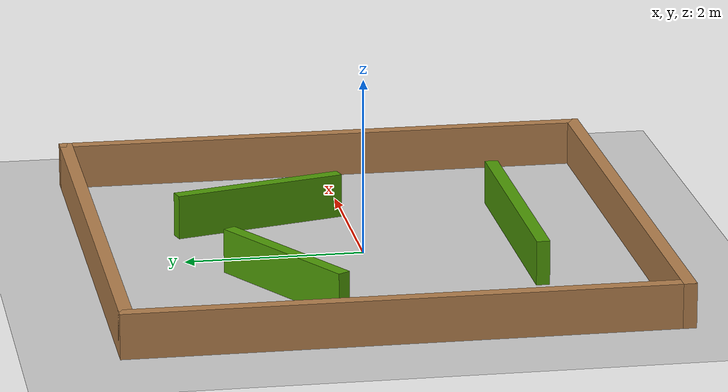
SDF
<sdf version="1.7">
 <world name="default">
  <light name="sun" type="directional">
   <pose>0 0 10 0 -0 0</pose>
   <diffuse>0.8 0.8 0.8 1</diffuse>
   <specular>0.2 0.2 0.2 1</specular>
   <attenuation>
    <range>1000</range>
    <constant>0.9</constant>
    <linear>0.01</linear>
    <quadratic>0.001</quadratic>
   </attenuation>
   <direction>-0.5 0.1 -0.9</direction>
   <spot><inner_angle>0</inner_angle><outer_angle>0</outer_angle><falloff>0</falloff></spot>
  </light>
  <model name="ground_plane">
   <static>1</static>
   <link name="link">
    <collision name="collision">
     <geometry><plane><normal>0 0 1</normal><size>100 100</size></plane></geometry>
     <surface>
      <contact><collide_bitmask>65535</collide_bitmask></contact>
      <friction><ode><mu>100</mu><mu2>50</mu2></ode></friction>
     </surface>
    </collision>
    <visual name="visual">
     <cast_shadows>0</cast_shadows>
     <geometry><plane><normal>0 0 1</normal><size>100 100</size></plane></geometry>
     <material>
      <script><uri>file://media/materials/scripts/gazebo.material</uri><name>Gazebo/Grey</name></script>
     </material>
    </visual>
   </link>
  </model>
  <gravity>0 0 -9.8</gravity>
  <magnetic_field>6e-06 2.3e-05 -4.2e-05</magnetic_field>
  <atmosphere type="adiabatic"/>
  <physics type="ode">
   <max_step_size>0.001</max_step_size>
   <real_time_factor>1</real_time_factor>
   <real_time_update_rate>1000</real_time_update_rate>
  </physics>
  <scene><ambient>0.4 0.4 0.4 1</ambient><background>0.7 0.7 0.7 1</background><shadows>1</shadows></scene>
  <spherical_coordinates>
   <surface_model>EARTH_WGS84</surface_model>
   <latitude_deg>0</latitude_deg>
   <longitude_deg>0</longitude_deg>
   <elevation>0</elevation>
   <heading_deg>0</heading_deg>
  </spherical_coordinates>
  <model name="room">
   <link name="Wall_0">
    <collision name="Wall_0_Collision">
     <geometry><box><size>6.15 0.15 0.5</size></box></geometry>
     <pose>0 0 0.25 0 -0 0</pose>
    </collision>
    <visual name="Wall_0_Visual">
     <pose>0 0 0.25 0 -0 0</pose>
     <geometry><box><size>6.15 0.15 0.5</size></box></geometry>
     <material>
      <script><uri>file://media/materials/scripts/gazebo.material</uri><name>Gazebo/Wood</name></script>
      <ambient>1 1 1 1</ambient>
     </material>
     <meta><layer>0</layer></meta>
    </visual>
    <pose>0 -3 0 0 -0 3.14159</pose>
   </link>
   <link name="Wall_10">
    <collision name="Wall_10_Collision">
     <geometry><box><size>3 0.15 0.5</size></box></geometry>
     <pose>0 0 0.25 0 -0 0</pose>
    </collision>
    <visual name="Wall_10_Visual">
     <pose>0 0 0.25 0 -0 0</pose>
     <geometry><box><size>3 0.15 0.5</size></box></geometry>
     <material>
      <script><uri>file://media/materials/scripts/gazebo.material</uri><name>Gazebo/Grey</name></script>
      <ambient>0.305882 0.603922 0.0235294 1</ambient>
     </material>
     <meta><layer>0</layer></meta>
    </visual>
    <pose>0.089 -1.751 0 0 -0 0</pose>
   </link>
   <link name="Wall_12">
    <collision name="Wall_12_Collision">
     <geometry><box><size>2 0.15 0.5</size></box></geometry>
     <pose>0 0 0.25 0 -0 0</pose>
    </collision>
    <visual name="Wall_12_Visual">
     <pose>0 0 0.25 0 -0 0</pose>
     <geometry><box><size>2 0.15 0.5</size></box></geometry>
     <material>
      <script><uri>file://media/materials/scripts/gazebo.material</uri><name>Gazebo/Grey</name></script>
      <ambient>0.305882 0.603922 0.0235294 1</ambient>
     </material>
     <meta><layer>0</layer></meta>
    </visual>
    <pose>1.1595 1.0105 0 0 -0 -1.30891</pose>
   </link>
   <link name="Wall_4">
    <collision name="Wall_4_Collision">
     <geometry><box><size>6.15 0.15 0.5</size></box></geometry>
     <pose>0 0 0.25 0 -0 0</pose>
    </collision>
    <visual name="Wall_4_Visual">
     <pose>0 0 0.25 0 -0 0</pose>
     <geometry><box><size>6.15 0.15 0.5</size></box></geometry>
     <material>
      <script><uri>file://media/materials/scripts/gazebo.material</uri><name>Gazebo/Wood</name></script>
      <ambient>1 1 1 1</ambient>
     </material>
     <meta><layer>0</layer></meta>
    </visual>
    <pose>-3 0 0 0 -0 1.5708</pose>
   </link>
   <link name="Wall_5">
    <collision name="Wall_5_Collision">
     <geometry><box><size>6.15 0.15 0.5</size></box></geometry>
     <pose>0 0 0.25 0 -0 0</pose>
    </collision>
    <visual name="Wall_5_Visual">
     <pose>0 0 0.25 0 -0 0</pose>
     <geometry><box><size>6.15 0.15 0.5</size></box></geometry>
     <material>
      <script><uri>file://media/materials/scripts/gazebo.material</uri><name>Gazebo/Wood</name></script>
      <ambient>1 1 1 1</ambient>
     </material>
     <meta><layer>0</layer></meta>
    </visual>
    <pose>0 3 0 0 -0 0</pose>
   </link>
   <link name="Wall_6">
    <collision name="Wall_6_Collision">
     <geometry><box><size>6.15 0.15 0.5</size></box></geometry>
     <pose>0 0 0.25 0 -0 0</pose>
    </collision>
    <visual name="Wall_6_Visual">
     <pose>0 0 0.25 0 -0 0</pose>
     <geometry><box><size>6.15 0.15 0.5</size></box></geometry>
     <material>
      <script><uri>file://media/materials/scripts/gazebo.material</uri><name>Gazebo/Wood</name></script>
      <ambient>1 1 1 1</ambient>
     </material>
     <meta><layer>0</layer></meta>
    </visual>
    <pose>3 0 0 0 -0 -1.5708</pose>
   </link>
   <link name="Wall_8">
    <collision name="Wall_8_Collision">
     <geometry><box><size>2 0.15 0.5</size></box></geometry>
     <pose>0 0 0.25 0 -0 0</pose>
    </collision>
    <visual name="Wall_8_Visual">
     <pose>0 0 0.25 0 -0 0</pose>
     <geometry><box><size>2 0.15 0.5</size></box></geometry>
     <material>
      <script><uri>file://media/materials/scripts/gazebo.material</uri><name>Gazebo/Grey</name></script>
      <ambient>0.305882 0.603922 0.0235294 1</ambient>
     </material>
     <meta><layer>0</layer></meta>
    </visual>
    <pose>-1.245 1.0565 0 0 -0 -2.61795</pose>
   </link>
   <static>1</static>
  </model>
 </world>
</sdf>
